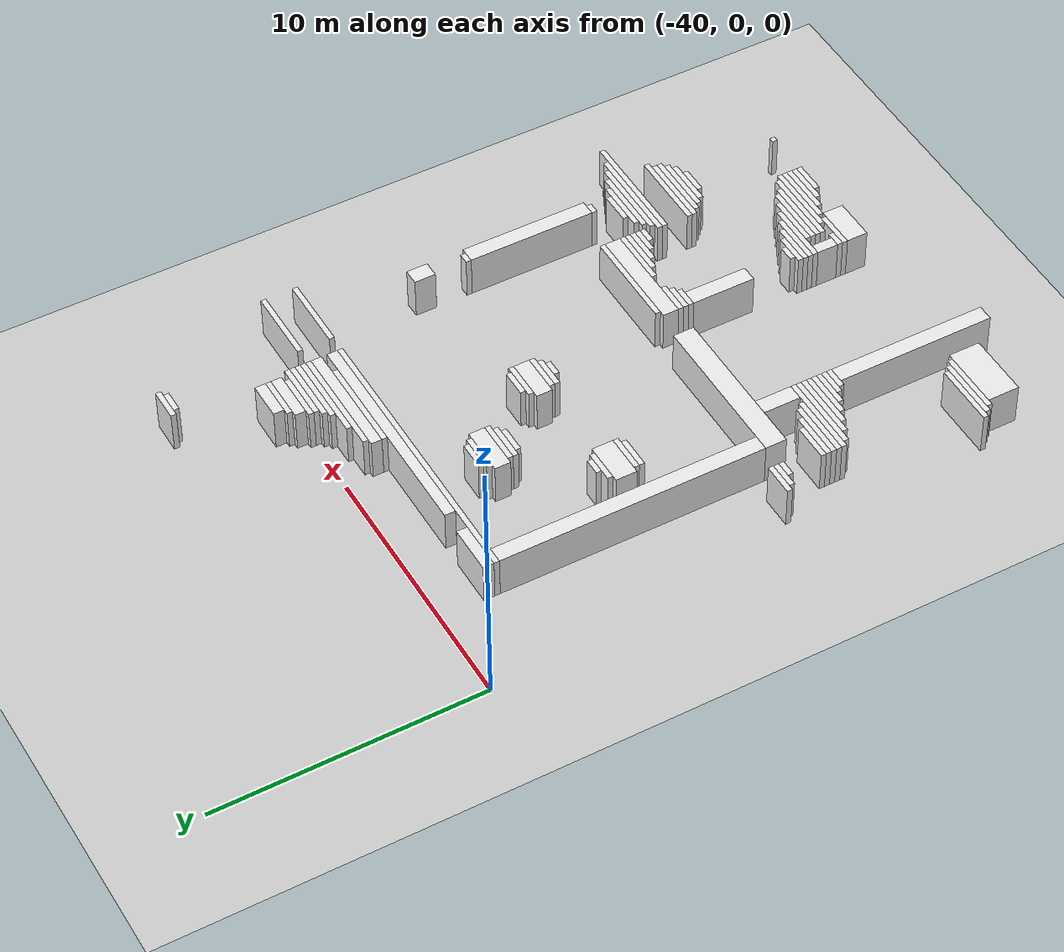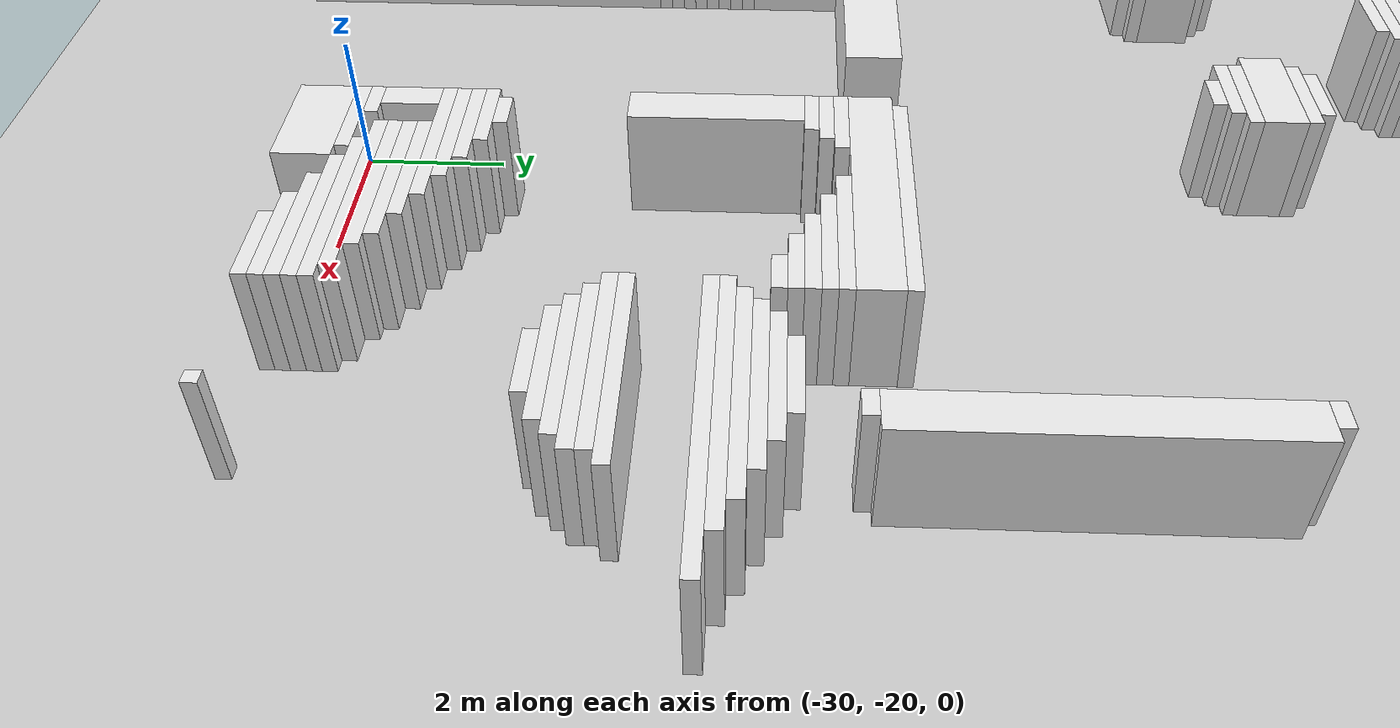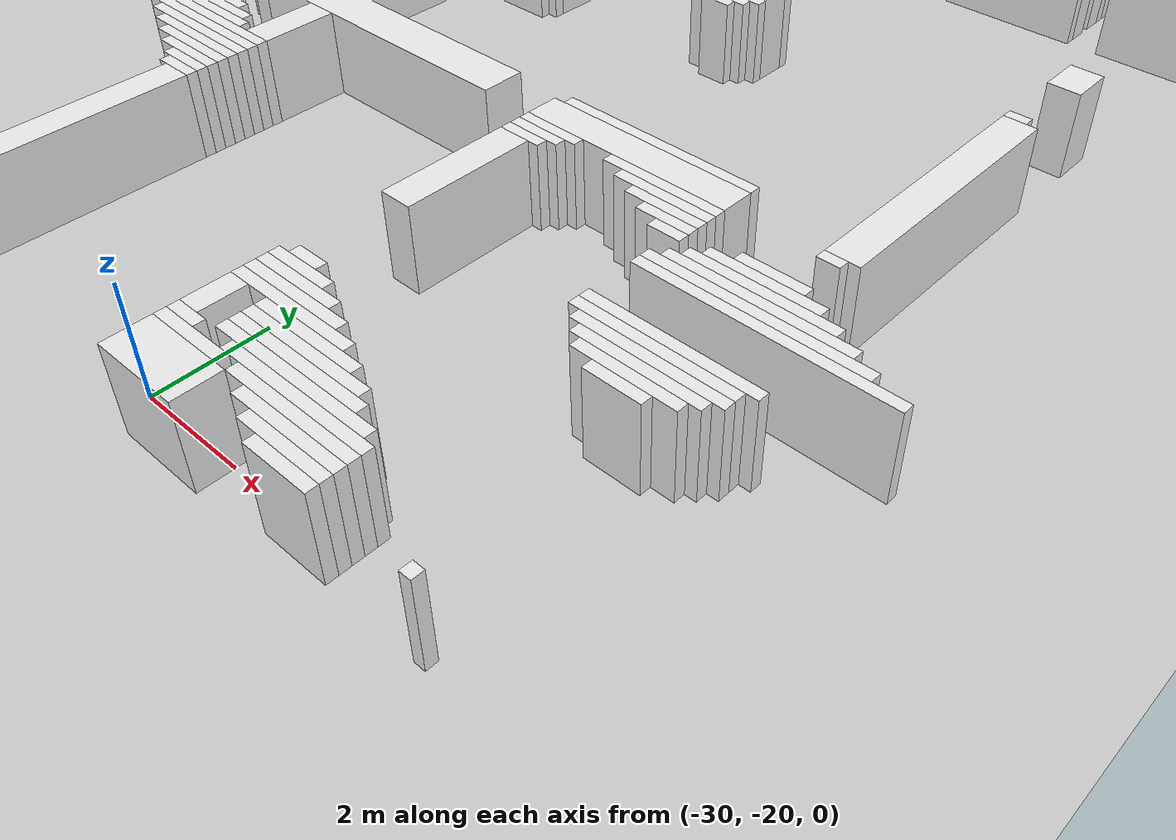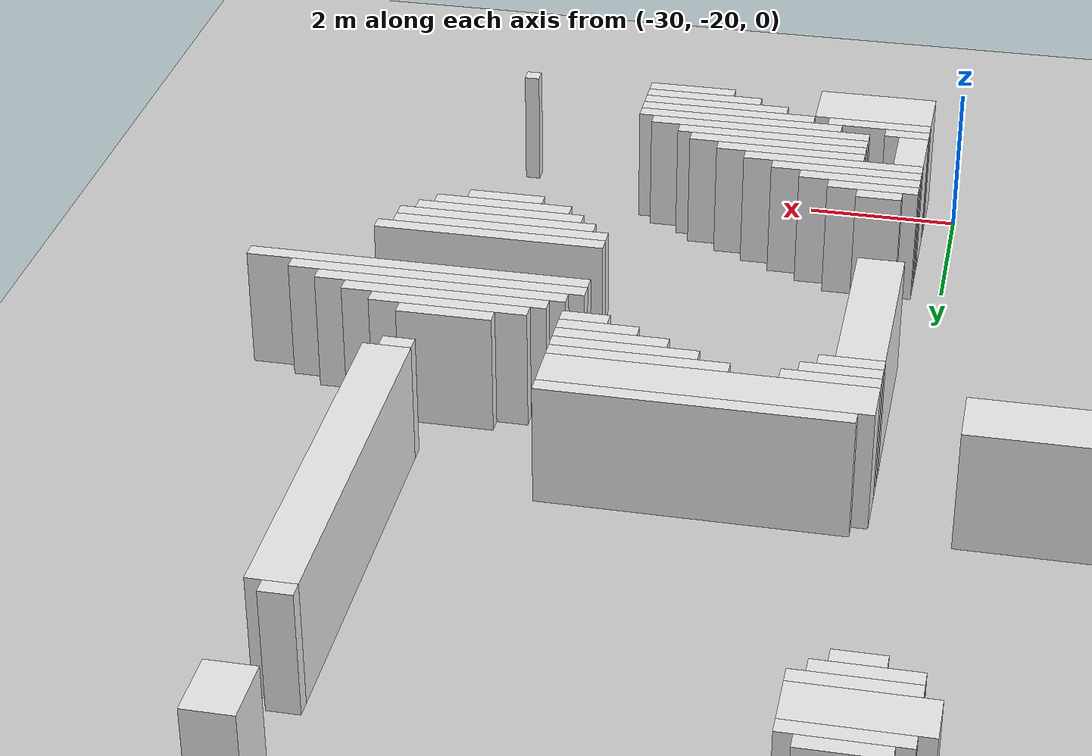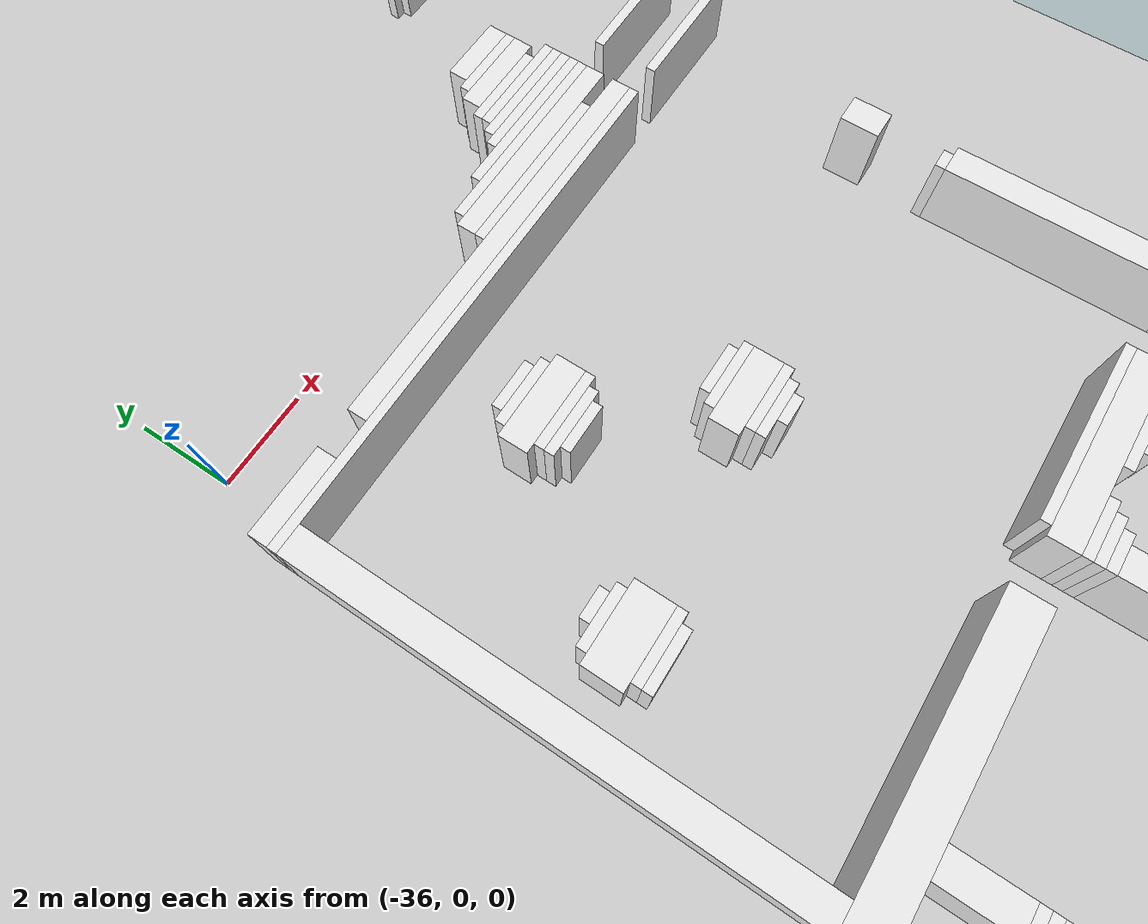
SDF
<sdf version="1.7">
 <world name="default">
  <model name="ground_plane">
   <static>1</static>
   <link name="link">
    <collision name="collision">
     <geometry><plane><normal>0 0 1</normal><size>120 120</size></plane></geometry>
    </collision>
    <visual name="visual">
     <geometry><plane><normal>0 0 1</normal><size>120 120</size></plane></geometry>
     <material>
      <script><uri>file://media/materials/scripts/gazebo.material</uri><name>Gazebo/Grey</name></script>
     </material>
    </visual>
   </link>
  </model>
  <model name="random_complex_02_model">
   <static>1</static>
   <link name="obs_1785">
    <pose>-25.0000 4.1000 0.8000 0 0 0</pose>
    <collision name="obs_1785_col"><geometry><box><size>1.2000 0.2000 1.6000</size></box></geometry></collision>
    <visual name="obs_1785_vis">
     <geometry><box><size>1.2000 0.2000 1.6000</size></box></geometry>
     <material>
      <script><uri>file://media/materials/scripts/gazebo.material</uri><name>Gazebo/White</name></script>
     </material>
    </visual>
   </link>
   <link name="obs_1798">
    <pose>-25.0000 3.9000 0.8000 0 0 0</pose>
    <collision name="obs_1798_col"><geometry><box><size>0.8000 0.2000 1.6000</size></box></geometry></collision>
    <visual name="obs_1798_vis">
     <geometry><box><size>0.8000 0.2000 1.6000</size></box></geometry>
     <material>
      <script><uri>file://media/materials/scripts/gazebo.material</uri><name>Gazebo/White</name></script>
     </material>
    </visual>
   </link>
   <link name="obs_1925">
    <pose>-26.5000 1.0000 0.8000 0 0 0</pose>
    <collision name="obs_1925_col"><geometry><box><size>1.4000 0.4000 1.6000</size></box></geometry></collision>
    <visual name="obs_1925_vis">
     <geometry><box><size>1.4000 0.4000 1.6000</size></box></geometry>
     <material>
      <script><uri>file://media/materials/scripts/gazebo.material</uri><name>Gazebo/White</name></script>
     </material>
    </visual>
   </link>
   <link name="obs_1937">
    <pose>-26.6000 0.7000 0.8000 0 0 0</pose>
    <collision name="obs_1937_col"><geometry><box><size>1.6000 0.2000 1.6000</size></box></geometry></collision>
    <visual name="obs_1937_vis">
     <geometry><box><size>1.6000 0.2000 1.6000</size></box></geometry>
     <material>
      <script><uri>file://media/materials/scripts/gazebo.material</uri><name>Gazebo/White</name></script>
     </material>
    </visual>
   </link>
   <link name="obs_1953">
    <pose>-26.7000 0.4000 0.8000 0 0 0</pose>
    <collision name="obs_1953_col"><geometry><box><size>1.8000 0.4000 1.6000</size></box></geometry></collision>
    <visual name="obs_1953_vis">
     <geometry><box><size>1.8000 0.4000 1.6000</size></box></geometry>
     <material>
      <script><uri>file://media/materials/scripts/gazebo.material</uri><name>Gazebo/White</name></script>
     </material>
    </visual>
   </link>
   <link name="obs_1963">
    <pose>-26.9000 0.1000 0.8000 0 0 0</pose>
    <collision name="obs_1963_col"><geometry><box><size>1.8000 0.2000 1.6000</size></box></geometry></collision>
    <visual name="obs_1963_vis">
     <geometry><box><size>1.8000 0.2000 1.6000</size></box></geometry>
     <material>
      <script><uri>file://media/materials/scripts/gazebo.material</uri><name>Gazebo/White</name></script>
     </material>
    </visual>
   </link>
   <link name="obs_1972">
    <pose>-26.7000 -0.1000 0.8000 0 0 0</pose>
    <collision name="obs_1972_col"><geometry><box><size>2.2000 0.2000 1.6000</size></box></geometry></collision>
    <visual name="obs_1972_vis">
     <geometry><box><size>2.2000 0.2000 1.6000</size></box></geometry>
     <material>
      <script><uri>file://media/materials/scripts/gazebo.material</uri><name>Gazebo/White</name></script>
     </material>
    </visual>
   </link>
   <link name="obs_1980">
    <pose>-26.8000 -0.3000 0.8000 0 0 0</pose>
    <collision name="obs_1980_col"><geometry><box><size>2.4000 0.2000 1.6000</size></box></geometry></collision>
    <visual name="obs_1980_vis">
     <geometry><box><size>2.4000 0.2000 1.6000</size></box></geometry>
     <material>
      <script><uri>file://media/materials/scripts/gazebo.material</uri><name>Gazebo/White</name></script>
     </material>
    </visual>
   </link>
   <link name="obs_1988">
    <pose>-26.9000 -0.5000 0.8000 0 0 0</pose>
    <collision name="obs_1988_col"><geometry><box><size>2.6000 0.2000 1.6000</size></box></geometry></collision>
    <visual name="obs_1988_vis">
     <geometry><box><size>2.6000 0.2000 1.6000</size></box></geometry>
     <material>
      <script><uri>file://media/materials/scripts/gazebo.material</uri><name>Gazebo/White</name></script>
     </material>
    </visual>
   </link>
   <link name="obs_1996">
    <pose>-27.3000 -0.7000 0.8000 0 0 0</pose>
    <collision name="obs_1996_col"><geometry><box><size>3.4000 0.2000 1.6000</size></box></geometry></collision>
    <visual name="obs_1996_vis">
     <geometry><box><size>3.4000 0.2000 1.6000</size></box></geometry>
     <material>
      <script><uri>file://media/materials/scripts/gazebo.material</uri><name>Gazebo/White</name></script>
     </material>
    </visual>
   </link>
   <link name="obs_2007">
    <pose>-27.7000 -0.9000 0.8000 0 0 0</pose>
    <collision name="obs_2007_col"><geometry><box><size>4.2000 0.2000 1.6000</size></box></geometry></collision>
    <visual name="obs_2007_vis">
     <geometry><box><size>4.2000 0.2000 1.6000</size></box></geometry>
     <material>
      <script><uri>file://media/materials/scripts/gazebo.material</uri><name>Gazebo/White</name></script>
     </material>
    </visual>
   </link>
   <link name="obs_2008">
    <pose>-23.6000 -0.9000 0.8000 0 0 0</pose>
    <collision name="obs_2008_col"><geometry><box><size>2.8000 0.2000 1.6000</size></box></geometry></collision>
    <visual name="obs_2008_vis">
     <geometry><box><size>2.8000 0.2000 1.6000</size></box></geometry>
     <material>
      <script><uri>file://media/materials/scripts/gazebo.material</uri><name>Gazebo/White</name></script>
     </material>
    </visual>
   </link>
   <link name="obs_2025">
    <pose>-27.8000 -1.2000 0.8000 0 0 0</pose>
    <collision name="obs_2025_col"><geometry><box><size>4.4000 0.4000 1.6000</size></box></geometry></collision>
    <visual name="obs_2025_vis">
     <geometry><box><size>4.4000 0.4000 1.6000</size></box></geometry>
     <material>
      <script><uri>file://media/materials/scripts/gazebo.material</uri><name>Gazebo/White</name></script>
     </material>
    </visual>
   </link>
   <link name="obs_2038">
    <pose>-28.2000 -1.5000 0.8000 0 0 0</pose>
    <collision name="obs_2038_col"><geometry><box><size>3.6000 0.2000 1.6000</size></box></geometry></collision>
    <visual name="obs_2038_vis">
     <geometry><box><size>3.6000 0.2000 1.6000</size></box></geometry>
     <material>
      <script><uri>file://media/materials/scripts/gazebo.material</uri><name>Gazebo/White</name></script>
     </material>
    </visual>
   </link>
   <link name="obs_2052">
    <pose>-35.7000 -1.8000 0.8000 0 0 0</pose>
    <collision name="obs_2052_col"><geometry><box><size>1.8000 0.4000 1.6000</size></box></geometry></collision>
    <visual name="obs_2052_vis">
     <geometry><box><size>1.8000 0.4000 1.6000</size></box></geometry>
     <material>
      <script><uri>file://media/materials/scripts/gazebo.material</uri><name>Gazebo/White</name></script>
     </material>
    </visual>
   </link>
   <link name="obs_2053">
    <pose>-29.8000 -1.8000 0.8000 0 0 0</pose>
    <collision name="obs_2053_col"><geometry><box><size>8.4000 0.4000 1.6000</size></box></geometry></collision>
    <visual name="obs_2053_vis">
     <geometry><box><size>8.4000 0.4000 1.6000</size></box></geometry>
     <material>
      <script><uri>file://media/materials/scripts/gazebo.material</uri><name>Gazebo/White</name></script>
     </material>
    </visual>
   </link>
   <link name="obs_2062">
    <pose>-31.1000 -2.1000 0.8000 0 0 0</pose>
    <collision name="obs_2062_col"><geometry><box><size>11.0000 0.2000 1.6000</size></box></geometry></collision>
    <visual name="obs_2062_vis">
     <geometry><box><size>11.0000 0.2000 1.6000</size></box></geometry>
     <material>
      <script><uri>file://media/materials/scripts/gazebo.material</uri><name>Gazebo/White</name></script>
     </material>
    </visual>
   </link>
   <link name="obs_2063">
    <pose>-23.6000 -2.1000 0.8000 0 0 0</pose>
    <collision name="obs_2063_col"><geometry><box><size>2.8000 0.2000 1.6000</size></box></geometry></collision>
    <visual name="obs_2063_vis">
     <geometry><box><size>2.8000 0.2000 1.6000</size></box></geometry>
     <material>
      <script><uri>file://media/materials/scripts/gazebo.material</uri><name>Gazebo/White</name></script>
     </material>
    </visual>
   </link>
   <link name="obs_2125">
    <pose>-32.1000 -3.7000 0.8000 0 0 0</pose>
    <collision name="obs_2125_col"><geometry><box><size>1.0000 0.2000 1.6000</size></box></geometry></collision>
    <visual name="obs_2125_vis">
     <geometry><box><size>1.0000 0.2000 1.6000</size></box></geometry>
     <material>
      <script><uri>file://media/materials/scripts/gazebo.material</uri><name>Gazebo/White</name></script>
     </material>
    </visual>
   </link>
   <link name="obs_2137">
    <pose>-32.1000 -3.9000 0.8000 0 0 0</pose>
    <collision name="obs_2137_col"><geometry><box><size>1.4000 0.2000 1.6000</size></box></geometry></collision>
    <visual name="obs_2137_vis">
     <geometry><box><size>1.4000 0.2000 1.6000</size></box></geometry>
     <material>
      <script><uri>file://media/materials/scripts/gazebo.material</uri><name>Gazebo/White</name></script>
     </material>
    </visual>
   </link>
   <link name="obs_2164">
    <pose>-32.1000 -4.3000 0.8000 0 0 0</pose>
    <collision name="obs_2164_col"><geometry><box><size>1.8000 0.6000 1.6000</size></box></geometry></collision>
    <visual name="obs_2164_vis">
     <geometry><box><size>1.8000 0.6000 1.6000</size></box></geometry>
     <material>
      <script><uri>file://media/materials/scripts/gazebo.material</uri><name>Gazebo/White</name></script>
     </material>
    </visual>
   </link>
   <link name="obs_2173">
    <pose>-32.0000 -4.7000 0.8000 0 0 0</pose>
    <collision name="obs_2173_col"><geometry><box><size>1.6000 0.2000 1.6000</size></box></geometry></collision>
    <visual name="obs_2173_vis">
     <geometry><box><size>1.6000 0.2000 1.6000</size></box></geometry>
     <material>
      <script><uri>file://media/materials/scripts/gazebo.material</uri><name>Gazebo/White</name></script>
     </material>
    </visual>
   </link>
   <link name="obs_2179">
    <pose>-32.1000 -4.9000 0.8000 0 0 0</pose>
    <collision name="obs_2179_col"><geometry><box><size>1.4000 0.2000 1.6000</size></box></geometry></collision>
    <visual name="obs_2179_vis">
     <geometry><box><size>1.4000 0.2000 1.6000</size></box></geometry>
     <material>
      <script><uri>file://media/materials/scripts/gazebo.material</uri><name>Gazebo/White</name></script>
     </material>
    </visual>
   </link>
   <link name="obs_2187">
    <pose>-32.1000 -5.1000 0.8000 0 0 0</pose>
    <collision name="obs_2187_col"><geometry><box><size>1.0000 0.2000 1.6000</size></box></geometry></collision>
    <visual name="obs_2187_vis">
     <geometry><box><size>1.0000 0.2000 1.6000</size></box></geometry>
     <material>
      <script><uri>file://media/materials/scripts/gazebo.material</uri><name>Gazebo/White</name></script>
     </material>
    </visual>
   </link>
   <link name="obs_2242">
    <pose>-23.7000 -6.2000 0.8000 0 0 0</pose>
    <collision name="obs_2242_col"><geometry><box><size>0.6000 0.8000 1.6000</size></box></geometry></collision>
    <visual name="obs_2242_vis">
     <geometry><box><size>0.6000 0.8000 1.6000</size></box></geometry>
     <material>
      <script><uri>file://media/materials/scripts/gazebo.material</uri><name>Gazebo/White</name></script>
     </material>
    </visual>
   </link>
   <link name="obs_2244">
    <pose>-29.9000 -6.5000 0.8000 0 0 0</pose>
    <collision name="obs_2244_col"><geometry><box><size>1.0000 0.2000 1.6000</size></box></geometry></collision>
    <visual name="obs_2244_vis">
     <geometry><box><size>1.0000 0.2000 1.6000</size></box></geometry>
     <material>
      <script><uri>file://media/materials/scripts/gazebo.material</uri><name>Gazebo/White</name></script>
     </material>
    </visual>
   </link>
   <link name="obs_2250">
    <pose>-29.9000 -6.7000 0.8000 0 0 0</pose>
    <collision name="obs_2250_col"><geometry><box><size>1.4000 0.2000 1.6000</size></box></geometry></collision>
    <visual name="obs_2250_vis">
     <geometry><box><size>1.4000 0.2000 1.6000</size></box></geometry>
     <material>
      <script><uri>file://media/materials/scripts/gazebo.material</uri><name>Gazebo/White</name></script>
     </material>
    </visual>
   </link>
   <link name="obs_2255">
    <pose>-34.5000 -6.9000 0.8000 0 0 0</pose>
    <collision name="obs_2255_col"><geometry><box><size>0.6000 0.2000 1.6000</size></box></geometry></collision>
    <visual name="obs_2255_vis">
     <geometry><box><size>0.6000 0.2000 1.6000</size></box></geometry>
     <material>
      <script><uri>file://media/materials/scripts/gazebo.material</uri><name>Gazebo/White</name></script>
     </material>
    </visual>
   </link>
   <link name="obs_2260">
    <pose>-34.6000 -7.1000 0.8000 0 0 0</pose>
    <collision name="obs_2260_col"><geometry><box><size>1.2000 0.2000 1.6000</size></box></geometry></collision>
    <visual name="obs_2260_vis">
     <geometry><box><size>1.2000 0.2000 1.6000</size></box></geometry>
     <material>
      <script><uri>file://media/materials/scripts/gazebo.material</uri><name>Gazebo/White</name></script>
     </material>
    </visual>
   </link>
   <link name="obs_2267">
    <pose>-30.0000 -7.1000 0.8000 0 0 0</pose>
    <collision name="obs_2267_col"><geometry><box><size>1.6000 0.6000 1.6000</size></box></geometry></collision>
    <visual name="obs_2267_vis">
     <geometry><box><size>1.6000 0.6000 1.6000</size></box></geometry>
     <material>
      <script><uri>file://media/materials/scripts/gazebo.material</uri><name>Gazebo/White</name></script>
     </material>
    </visual>
   </link>
   <link name="obs_2275">
    <pose>-29.9000 -7.5000 0.8000 0 0 0</pose>
    <collision name="obs_2275_col"><geometry><box><size>1.4000 0.2000 1.6000</size></box></geometry></collision>
    <visual name="obs_2275_vis">
     <geometry><box><size>1.4000 0.2000 1.6000</size></box></geometry>
     <material>
      <script><uri>file://media/materials/scripts/gazebo.material</uri><name>Gazebo/White</name></script>
     </material>
    </visual>
   </link>
   <link name="obs_2280">
    <pose>-30.0000 -7.7000 0.8000 0 0 0</pose>
    <collision name="obs_2280_col"><geometry><box><size>1.2000 0.2000 1.6000</size></box></geometry></collision>
    <visual name="obs_2280_vis">
     <geometry><box><size>1.2000 0.2000 1.6000</size></box></geometry>
     <material>
      <script><uri>file://media/materials/scripts/gazebo.material</uri><name>Gazebo/White</name></script>
     </material>
    </visual>
   </link>
   <link name="obs_2286">
    <pose>-34.6000 -7.6000 0.8000 0 0 0</pose>
    <collision name="obs_2286_col"><geometry><box><size>1.6000 0.8000 1.6000</size></box></geometry></collision>
    <visual name="obs_2286_vis">
     <geometry><box><size>1.6000 0.8000 1.6000</size></box></geometry>
     <material>
      <script><uri>file://media/materials/scripts/gazebo.material</uri><name>Gazebo/White</name></script>
     </material>
    </visual>
   </link>
   <link name="obs_2288">
    <pose>-29.9000 -7.9000 0.8000 0 0 0</pose>
    <collision name="obs_2288_col"><geometry><box><size>0.6000 0.2000 1.6000</size></box></geometry></collision>
    <visual name="obs_2288_vis">
     <geometry><box><size>0.6000 0.2000 1.6000</size></box></geometry>
     <material>
      <script><uri>file://media/materials/scripts/gazebo.material</uri><name>Gazebo/White</name></script>
     </material>
    </visual>
   </link>
   <link name="obs_2289">
    <pose>-23.8000 -7.9000 0.8000 0 0 0</pose>
    <collision name="obs_2289_col"><geometry><box><size>0.4000 0.2000 1.6000</size></box></geometry></collision>
    <visual name="obs_2289_vis">
     <geometry><box><size>0.4000 0.2000 1.6000</size></box></geometry>
     <material>
      <script><uri>file://media/materials/scripts/gazebo.material</uri><name>Gazebo/White</name></script>
     </material>
    </visual>
   </link>
   <link name="obs_2298">
    <pose>-34.5000 -8.1000 0.8000 0 0 0</pose>
    <collision name="obs_2298_col"><geometry><box><size>1.4000 0.2000 1.6000</size></box></geometry></collision>
    <visual name="obs_2298_vis">
     <geometry><box><size>1.4000 0.2000 1.6000</size></box></geometry>
     <material>
      <script><uri>file://media/materials/scripts/gazebo.material</uri><name>Gazebo/White</name></script>
     </material>
    </visual>
   </link>
   <link name="obs_2305">
    <pose>-34.6000 -8.3000 0.8000 0 0 0</pose>
    <collision name="obs_2305_col"><geometry><box><size>1.2000 0.2000 1.6000</size></box></geometry></collision>
    <visual name="obs_2305_vis">
     <geometry><box><size>1.2000 0.2000 1.6000</size></box></geometry>
     <material>
      <script><uri>file://media/materials/scripts/gazebo.material</uri><name>Gazebo/White</name></script>
     </material>
    </visual>
   </link>
   <link name="obs_2416">
    <pose>-38.0000 -11.9000 0.8000 0 0 0</pose>
    <collision name="obs_2416_col"><geometry><box><size>1.2000 0.2000 1.6000</size></box></geometry></collision>
    <visual name="obs_2416_vis">
     <geometry><box><size>1.2000 0.2000 1.6000</size></box></geometry>
     <material>
      <script><uri>file://media/materials/scripts/gazebo.material</uri><name>Gazebo/White</name></script>
     </material>
    </visual>
   </link>
   <link name="obs_2423">
    <pose>-36.3000 -7.2000 0.8000 0 0 0</pose>
    <collision name="obs_2423_col"><geometry><box><size>0.6000 10.0000 1.6000</size></box></geometry></collision>
    <visual name="obs_2423_vis">
     <geometry><box><size>0.6000 10.0000 1.6000</size></box></geometry>
     <material>
      <script><uri>file://media/materials/scripts/gazebo.material</uri><name>Gazebo/White</name></script>
     </material>
    </visual>
   </link>
   <link name="obs_2424">
    <pose>-37.9000 -12.1000 0.8000 0 0 0</pose>
    <collision name="obs_2424_col"><geometry><box><size>1.0000 0.2000 1.6000</size></box></geometry></collision>
    <visual name="obs_2424_vis">
     <geometry><box><size>1.0000 0.2000 1.6000</size></box></geometry>
     <material>
      <script><uri>file://media/materials/scripts/gazebo.material</uri><name>Gazebo/White</name></script>
     </material>
    </visual>
   </link>
   <link name="obs_2432">
    <pose>-37.7000 -12.3000 0.8000 0 0 0</pose>
    <collision name="obs_2432_col"><geometry><box><size>0.6000 0.2000 1.6000</size></box></geometry></collision>
    <visual name="obs_2432_vis">
     <geometry><box><size>0.6000 0.2000 1.6000</size></box></geometry>
     <material>
      <script><uri>file://media/materials/scripts/gazebo.material</uri><name>Gazebo/White</name></script>
     </material>
    </visual>
   </link>
   <link name="obs_2433">
    <pose>-27.5000 -12.3000 0.8000 0 0 0</pose>
    <collision name="obs_2433_col"><geometry><box><size>3.8000 0.2000 1.6000</size></box></geometry></collision>
    <visual name="obs_2433_vis">
     <geometry><box><size>3.8000 0.2000 1.6000</size></box></geometry>
     <material>
      <script><uri>file://media/materials/scripts/gazebo.material</uri><name>Gazebo/White</name></script>
     </material>
    </visual>
   </link>
   <link name="obs_2447">
    <pose>-23.7000 -10.4000 0.8000 0 0 0</pose>
    <collision name="obs_2447_col"><geometry><box><size>0.6000 4.8000 1.6000</size></box></geometry></collision>
    <visual name="obs_2447_vis">
     <geometry><box><size>0.6000 4.8000 1.6000</size></box></geometry>
     <material>
      <script><uri>file://media/materials/scripts/gazebo.material</uri><name>Gazebo/White</name></script>
     </material>
    </visual>
   </link>
   <link name="obs_2459">
    <pose>-33.6000 -12.6000 0.8000 0 0 0</pose>
    <collision name="obs_2459_col"><geometry><box><size>6.0000 0.8000 1.6000</size></box></geometry></collision>
    <visual name="obs_2459_vis">
     <geometry><box><size>6.0000 0.8000 1.6000</size></box></geometry>
     <material>
      <script><uri>file://media/materials/scripts/gazebo.material</uri><name>Gazebo/White</name></script>
     </material>
    </visual>
   </link>
   <link name="obs_2460">
    <pose>-27.6000 -12.7000 0.8000 0 0 0</pose>
    <collision name="obs_2460_col"><geometry><box><size>4.0000 0.6000 1.6000</size></box></geometry></collision>
    <visual name="obs_2460_vis">
     <geometry><box><size>4.0000 0.6000 1.6000</size></box></geometry>
     <material>
      <script><uri>file://media/materials/scripts/gazebo.material</uri><name>Gazebo/White</name></script>
     </material>
    </visual>
   </link>
   <link name="obs_2463">
    <pose>-23.8000 -12.9000 0.8000 0 0 0</pose>
    <collision name="obs_2463_col"><geometry><box><size>0.4000 0.2000 1.6000</size></box></geometry></collision>
    <visual name="obs_2463_vis">
     <geometry><box><size>0.4000 0.2000 1.6000</size></box></geometry>
     <material>
      <script><uri>file://media/materials/scripts/gazebo.material</uri><name>Gazebo/White</name></script>
     </material>
    </visual>
   </link>
   <link name="obs_2467">
    <pose>-29.0000 -13.1000 0.8000 0 0 0</pose>
    <collision name="obs_2467_col"><geometry><box><size>1.2000 0.2000 1.6000</size></box></geometry></collision>
    <visual name="obs_2467_vis">
     <geometry><box><size>1.2000 0.2000 1.6000</size></box></geometry>
     <material>
      <script><uri>file://media/materials/scripts/gazebo.material</uri><name>Gazebo/White</name></script>
     </material>
    </visual>
   </link>
   <link name="obs_2468">
    <pose>-26.7000 -13.1000 0.8000 0 0 0</pose>
    <collision name="obs_2468_col"><geometry><box><size>2.2000 0.2000 1.6000</size></box></geometry></collision>
    <visual name="obs_2468_vis">
     <geometry><box><size>2.2000 0.2000 1.6000</size></box></geometry>
     <material>
      <script><uri>file://media/materials/scripts/gazebo.material</uri><name>Gazebo/White</name></script>
     </material>
    </visual>
   </link>
   <link name="obs_2473">
    <pose>-29.1000 -13.3000 0.8000 0 0 0</pose>
    <collision name="obs_2473_col"><geometry><box><size>1.0000 0.2000 1.6000</size></box></geometry></collision>
    <visual name="obs_2473_vis">
     <geometry><box><size>1.0000 0.2000 1.6000</size></box></geometry>
     <material>
      <script><uri>file://media/materials/scripts/gazebo.material</uri><name>Gazebo/White</name></script>
     </material>
    </visual>
   </link>
   <link name="obs_2474">
    <pose>-26.5000 -13.3000 0.8000 0 0 0</pose>
    <collision name="obs_2474_col"><geometry><box><size>1.8000 0.2000 1.6000</size></box></geometry></collision>
    <visual name="obs_2474_vis">
     <geometry><box><size>1.8000 0.2000 1.6000</size></box></geometry>
     <material>
      <script><uri>file://media/materials/scripts/gazebo.material</uri><name>Gazebo/White</name></script>
     </material>
    </visual>
   </link>
   <link name="obs_2480">
    <pose>-29.2000 -13.5000 0.8000 0 0 0</pose>
    <collision name="obs_2480_col"><geometry><box><size>0.8000 0.2000 1.6000</size></box></geometry></collision>
    <visual name="obs_2480_vis">
     <geometry><box><size>0.8000 0.2000 1.6000</size></box></geometry>
     <material>
      <script><uri>file://media/materials/scripts/gazebo.material</uri><name>Gazebo/White</name></script>
     </material>
    </visual>
   </link>
   <link name="obs_2481">
    <pose>-26.3000 -13.5000 0.8000 0 0 0</pose>
    <collision name="obs_2481_col"><geometry><box><size>1.4000 0.2000 1.6000</size></box></geometry></collision>
    <visual name="obs_2481_vis">
     <geometry><box><size>1.4000 0.2000 1.6000</size></box></geometry>
     <material>
      <script><uri>file://media/materials/scripts/gazebo.material</uri><name>Gazebo/White</name></script>
     </material>
    </visual>
   </link>
   <link name="obs_2486">
    <pose>-37.1000 -13.7000 0.8000 0 0 0</pose>
    <collision name="obs_2486_col"><geometry><box><size>1.4000 0.2000 1.6000</size></box></geometry></collision>
    <visual name="obs_2486_vis">
     <geometry><box><size>1.4000 0.2000 1.6000</size></box></geometry>
     <material>
      <script><uri>file://media/materials/scripts/gazebo.material</uri><name>Gazebo/White</name></script>
     </material>
    </visual>
   </link>
   <link name="obs_2487">
    <pose>-26.1000 -13.7000 0.8000 0 0 0</pose>
    <collision name="obs_2487_col"><geometry><box><size>1.0000 0.2000 1.6000</size></box></geometry></collision>
    <visual name="obs_2487_vis">
     <geometry><box><size>1.0000 0.2000 1.6000</size></box></geometry>
     <material>
      <script><uri>file://media/materials/scripts/gazebo.material</uri><name>Gazebo/White</name></script>
     </material>
    </visual>
   </link>
   <link name="obs_2488">
    <pose>-24.2000 -13.7000 0.8000 0 0 0</pose>
    <collision name="obs_2488_col"><geometry><box><size>1.2000 0.2000 1.6000</size></box></geometry></collision>
    <visual name="obs_2488_vis">
     <geometry><box><size>1.2000 0.2000 1.6000</size></box></geometry>
     <material>
      <script><uri>file://media/materials/scripts/gazebo.material</uri><name>Gazebo/White</name></script>
     </material>
    </visual>
   </link>
   <link name="obs_2494">
    <pose>-36.9000 -13.9000 0.8000 0 0 0</pose>
    <collision name="obs_2494_col"><geometry><box><size>1.8000 0.2000 1.6000</size></box></geometry></collision>
    <visual name="obs_2494_vis">
     <geometry><box><size>1.8000 0.2000 1.6000</size></box></geometry>
     <material>
      <script><uri>file://media/materials/scripts/gazebo.material</uri><name>Gazebo/White</name></script>
     </material>
    </visual>
   </link>
   <link name="obs_2495">
    <pose>-25.9000 -13.9000 0.8000 0 0 0</pose>
    <collision name="obs_2495_col"><geometry><box><size>0.6000 0.2000 1.6000</size></box></geometry></collision>
    <visual name="obs_2495_vis">
     <geometry><box><size>0.6000 0.2000 1.6000</size></box></geometry>
     <material>
      <script><uri>file://media/materials/scripts/gazebo.material</uri><name>Gazebo/White</name></script>
     </material>
    </visual>
   </link>
   <link name="obs_2496">
    <pose>-24.2000 -13.9000 0.8000 0 0 0</pose>
    <collision name="obs_2496_col"><geometry><box><size>2.0000 0.2000 1.6000</size></box></geometry></collision>
    <visual name="obs_2496_vis">
     <geometry><box><size>2.0000 0.2000 1.6000</size></box></geometry>
     <material>
      <script><uri>file://media/materials/scripts/gazebo.material</uri><name>Gazebo/White</name></script>
     </material>
    </visual>
   </link>
   <link name="obs_2503">
    <pose>-36.7000 -14.1000 0.8000 0 0 0</pose>
    <collision name="obs_2503_col"><geometry><box><size>2.2000 0.2000 1.6000</size></box></geometry></collision>
    <visual name="obs_2503_vis">
     <geometry><box><size>2.2000 0.2000 1.6000</size></box></geometry>
     <material>
      <script><uri>file://media/materials/scripts/gazebo.material</uri><name>Gazebo/White</name></script>
     </material>
    </visual>
   </link>
   <link name="obs_2504">
    <pose>-24.1000 -14.1000 0.8000 0 0 0</pose>
    <collision name="obs_2504_col"><geometry><box><size>2.6000 0.2000 1.6000</size></box></geometry></collision>
    <visual name="obs_2504_vis">
     <geometry><box><size>2.6000 0.2000 1.6000</size></box></geometry>
     <material>
      <script><uri>file://media/materials/scripts/gazebo.material</uri><name>Gazebo/White</name></script>
     </material>
    </visual>
   </link>
   <link name="obs_2509">
    <pose>-34.9000 -13.7000 0.8000 0 0 0</pose>
    <collision name="obs_2509_col"><geometry><box><size>0.6000 1.4000 1.6000</size></box></geometry></collision>
    <visual name="obs_2509_vis">
     <geometry><box><size>0.6000 1.4000 1.6000</size></box></geometry>
     <material>
      <script><uri>file://media/materials/scripts/gazebo.material</uri><name>Gazebo/White</name></script>
     </material>
    </visual>
   </link>
   <link name="obs_2511">
    <pose>-36.6000 -14.3000 0.8000 0 0 0</pose>
    <collision name="obs_2511_col"><geometry><box><size>2.4000 0.2000 1.6000</size></box></geometry></collision>
    <visual name="obs_2511_vis">
     <geometry><box><size>2.4000 0.2000 1.6000</size></box></geometry>
     <material>
      <script><uri>file://media/materials/scripts/gazebo.material</uri><name>Gazebo/White</name></script>
     </material>
    </visual>
   </link>
   <link name="obs_2512">
    <pose>-24.0000 -14.3000 0.8000 0 0 0</pose>
    <collision name="obs_2512_col"><geometry><box><size>3.2000 0.2000 1.6000</size></box></geometry></collision>
    <visual name="obs_2512_vis">
     <geometry><box><size>3.2000 0.2000 1.6000</size></box></geometry>
     <material>
      <script><uri>file://media/materials/scripts/gazebo.material</uri><name>Gazebo/White</name></script>
     </material>
    </visual>
   </link>
   <link name="obs_2523">
    <pose>-36.2000 -14.5000 0.8000 0 0 0</pose>
    <collision name="obs_2523_col"><geometry><box><size>3.2000 0.2000 1.6000</size></box></geometry></collision>
    <visual name="obs_2523_vis">
     <geometry><box><size>3.2000 0.2000 1.6000</size></box></geometry>
     <material>
      <script><uri>file://media/materials/scripts/gazebo.material</uri><name>Gazebo/White</name></script>
     </material>
    </visual>
   </link>
   <link name="obs_2524">
    <pose>-23.9000 -14.5000 0.8000 0 0 0</pose>
    <collision name="obs_2524_col"><geometry><box><size>3.8000 0.2000 1.6000</size></box></geometry></collision>
    <visual name="obs_2524_vis">
     <geometry><box><size>3.8000 0.2000 1.6000</size></box></geometry>
     <material>
      <script><uri>file://media/materials/scripts/gazebo.material</uri><name>Gazebo/White</name></script>
     </material>
    </visual>
   </link>
   <link name="obs_2531">
    <pose>-36.1000 -14.7000 0.8000 0 0 0</pose>
    <collision name="obs_2531_col"><geometry><box><size>3.0000 0.2000 1.6000</size></box></geometry></collision>
    <visual name="obs_2531_vis">
     <geometry><box><size>3.0000 0.2000 1.6000</size></box></geometry>
     <material>
      <script><uri>file://media/materials/scripts/gazebo.material</uri><name>Gazebo/White</name></script>
     </material>
    </visual>
   </link>
   <link name="obs_2532">
    <pose>-23.6000 -14.7000 0.8000 0 0 0</pose>
    <collision name="obs_2532_col"><geometry><box><size>4.4000 0.2000 1.6000</size></box></geometry></collision>
    <visual name="obs_2532_vis">
     <geometry><box><size>4.4000 0.2000 1.6000</size></box></geometry>
     <material>
      <script><uri>file://media/materials/scripts/gazebo.material</uri><name>Gazebo/White</name></script>
     </material>
    </visual>
   </link>
   <link name="obs_2542">
    <pose>-35.9000 -14.9000 0.8000 0 0 0</pose>
    <collision name="obs_2542_col"><geometry><box><size>2.6000 0.2000 1.6000</size></box></geometry></collision>
    <visual name="obs_2542_vis">
     <geometry><box><size>2.6000 0.2000 1.6000</size></box></geometry>
     <material>
      <script><uri>file://media/materials/scripts/gazebo.material</uri><name>Gazebo/White</name></script>
     </material>
    </visual>
   </link>
   <link name="obs_2552">
    <pose>-35.7000 -15.1000 0.8000 0 0 0</pose>
    <collision name="obs_2552_col"><geometry><box><size>2.2000 0.2000 1.6000</size></box></geometry></collision>
    <visual name="obs_2552_vis">
     <geometry><box><size>2.2000 0.2000 1.6000</size></box></geometry>
     <material>
      <script><uri>file://media/materials/scripts/gazebo.material</uri><name>Gazebo/White</name></script>
     </material>
    </visual>
   </link>
   <link name="obs_2563">
    <pose>-35.5000 -15.3000 0.8000 0 0 0</pose>
    <collision name="obs_2563_col"><geometry><box><size>1.8000 0.2000 1.6000</size></box></geometry></collision>
    <visual name="obs_2563_vis">
     <geometry><box><size>1.8000 0.2000 1.6000</size></box></geometry>
     <material>
      <script><uri>file://media/materials/scripts/gazebo.material</uri><name>Gazebo/White</name></script>
     </material>
    </visual>
   </link>
   <link name="obs_2573">
    <pose>-35.3000 -15.5000 0.8000 0 0 0</pose>
    <collision name="obs_2573_col"><geometry><box><size>1.4000 0.2000 1.6000</size></box></geometry></collision>
    <visual name="obs_2573_vis">
     <geometry><box><size>1.4000 0.2000 1.6000</size></box></geometry>
     <material>
      <script><uri>file://media/materials/scripts/gazebo.material</uri><name>Gazebo/White</name></script>
     </material>
    </visual>
   </link>
   <link name="obs_2585">
    <pose>-35.1000 -15.7000 0.8000 0 0 0</pose>
    <collision name="obs_2585_col"><geometry><box><size>1.0000 0.2000 1.6000</size></box></geometry></collision>
    <visual name="obs_2585_vis">
     <geometry><box><size>1.0000 0.2000 1.6000</size></box></geometry>
     <material>
      <script><uri>file://media/materials/scripts/gazebo.material</uri><name>Gazebo/White</name></script>
     </material>
    </visual>
   </link>
   <link name="obs_2586">
    <pose>-24.3000 -15.7000 0.8000 0 0 0</pose>
    <collision name="obs_2586_col"><geometry><box><size>3.0000 0.2000 1.6000</size></box></geometry></collision>
    <visual name="obs_2586_vis">
     <geometry><box><size>3.0000 0.2000 1.6000</size></box></geometry>
     <material>
      <script><uri>file://media/materials/scripts/gazebo.material</uri><name>Gazebo/White</name></script>
     </material>
    </visual>
   </link>
   <link name="obs_2594">
    <pose>-29.3000 -14.8000 0.8000 0 0 0</pose>
    <collision name="obs_2594_col"><geometry><box><size>0.6000 2.4000 1.6000</size></box></geometry></collision>
    <visual name="obs_2594_vis">
     <geometry><box><size>0.6000 2.4000 1.6000</size></box></geometry>
     <material>
      <script><uri>file://media/materials/scripts/gazebo.material</uri><name>Gazebo/White</name></script>
     </material>
    </visual>
   </link>
   <link name="obs_2598">
    <pose>-35.0000 -15.9000 0.8000 0 0 0</pose>
    <collision name="obs_2598_col"><geometry><box><size>0.8000 0.2000 1.6000</size></box></geometry></collision>
    <visual name="obs_2598_vis">
     <geometry><box><size>0.8000 0.2000 1.6000</size></box></geometry>
     <material>
      <script><uri>file://media/materials/scripts/gazebo.material</uri><name>Gazebo/White</name></script>
     </material>
    </visual>
   </link>
   <link name="obs_2599">
    <pose>-24.4000 -15.9000 0.8000 0 0 0</pose>
    <collision name="obs_2599_col"><geometry><box><size>2.8000 0.2000 1.6000</size></box></geometry></collision>
    <visual name="obs_2599_vis">
     <geometry><box><size>2.8000 0.2000 1.6000</size></box></geometry>
     <material>
      <script><uri>file://media/materials/scripts/gazebo.material</uri><name>Gazebo/White</name></script>
     </material>
    </visual>
   </link>
   <link name="obs_2609">
    <pose>-24.3000 -16.1000 0.8000 0 0 0</pose>
    <collision name="obs_2609_col"><geometry><box><size>2.6000 0.2000 1.6000</size></box></geometry></collision>
    <visual name="obs_2609_vis">
     <geometry><box><size>2.6000 0.2000 1.6000</size></box></geometry>
     <material>
      <script><uri>file://media/materials/scripts/gazebo.material</uri><name>Gazebo/White</name></script>
     </material>
    </visual>
   </link>
   <link name="obs_2615">
    <pose>-24.3000 -16.3000 0.8000 0 0 0</pose>
    <collision name="obs_2615_col"><geometry><box><size>2.2000 0.2000 1.6000</size></box></geometry></collision>
    <visual name="obs_2615_vis">
     <geometry><box><size>2.2000 0.2000 1.6000</size></box></geometry>
     <material>
      <script><uri>file://media/materials/scripts/gazebo.material</uri><name>Gazebo/White</name></script>
     </material>
    </visual>
   </link>
   <link name="obs_2622">
    <pose>-24.3000 -16.5000 0.8000 0 0 0</pose>
    <collision name="obs_2622_col"><geometry><box><size>1.8000 0.2000 1.6000</size></box></geometry></collision>
    <visual name="obs_2622_vis">
     <geometry><box><size>1.8000 0.2000 1.6000</size></box></geometry>
     <material>
      <script><uri>file://media/materials/scripts/gazebo.material</uri><name>Gazebo/White</name></script>
     </material>
    </visual>
   </link>
   <link name="obs_2630">
    <pose>-24.3000 -16.7000 0.8000 0 0 0</pose>
    <collision name="obs_2630_col"><geometry><box><size>1.0000 0.2000 1.6000</size></box></geometry></collision>
    <visual name="obs_2630_vis">
     <geometry><box><size>1.0000 0.2000 1.6000</size></box></geometry>
     <material>
      <script><uri>file://media/materials/scripts/gazebo.material</uri><name>Gazebo/White</name></script>
     </material>
    </visual>
   </link>
   <link name="obs_2664">
    <pose>-29.1000 -17.7000 0.8000 0 0 0</pose>
    <collision name="obs_2664_col"><geometry><box><size>0.6000 0.2000 1.6000</size></box></geometry></collision>
    <visual name="obs_2664_vis">
     <geometry><box><size>0.6000 0.2000 1.6000</size></box></geometry>
     <material>
      <script><uri>file://media/materials/scripts/gazebo.material</uri><name>Gazebo/White</name></script>
     </material>
    </visual>
   </link>
   <link name="obs_2677">
    <pose>-29.0000 -17.9000 0.8000 0 0 0</pose>
    <collision name="obs_2677_col"><geometry><box><size>1.2000 0.2000 1.6000</size></box></geometry></collision>
    <visual name="obs_2677_vis">
     <geometry><box><size>1.2000 0.2000 1.6000</size></box></geometry>
     <material>
      <script><uri>file://media/materials/scripts/gazebo.material</uri><name>Gazebo/White</name></script>
     </material>
    </visual>
   </link>
   <link name="obs_2686">
    <pose>-28.8000 -18.1000 0.8000 0 0 0</pose>
    <collision name="obs_2686_col"><geometry><box><size>1.6000 0.2000 1.6000</size></box></geometry></collision>
    <visual name="obs_2686_vis">
     <geometry><box><size>1.6000 0.2000 1.6000</size></box></geometry>
     <material>
      <script><uri>file://media/materials/scripts/gazebo.material</uri><name>Gazebo/White</name></script>
     </material>
    </visual>
   </link>
   <link name="obs_2696">
    <pose>-28.6000 -18.3000 0.8000 0 0 0</pose>
    <collision name="obs_2696_col"><geometry><box><size>2.0000 0.2000 1.6000</size></box></geometry></collision>
    <visual name="obs_2696_vis">
     <geometry><box><size>2.0000 0.2000 1.6000</size></box></geometry>
     <material>
      <script><uri>file://media/materials/scripts/gazebo.material</uri><name>Gazebo/White</name></script>
     </material>
    </visual>
   </link>
   <link name="obs_2704">
    <pose>-28.4000 -18.5000 0.8000 0 0 0</pose>
    <collision name="obs_2704_col"><geometry><box><size>2.4000 0.2000 1.6000</size></box></geometry></collision>
    <visual name="obs_2704_vis">
     <geometry><box><size>2.4000 0.2000 1.6000</size></box></geometry>
     <material>
      <script><uri>file://media/materials/scripts/gazebo.material</uri><name>Gazebo/White</name></script>
     </material>
    </visual>
   </link>
   <link name="obs_2709">
    <pose>-27.8000 -18.7000 0.8000 0 0 0</pose>
    <collision name="obs_2709_col"><geometry><box><size>2.0000 0.2000 1.6000</size></box></geometry></collision>
    <visual name="obs_2709_vis">
     <geometry><box><size>2.0000 0.2000 1.6000</size></box></geometry>
     <material>
      <script><uri>file://media/materials/scripts/gazebo.material</uri><name>Gazebo/White</name></script>
     </material>
    </visual>
   </link>
   <link name="obs_2720">
    <pose>-27.6000 -18.9000 0.8000 0 0 0</pose>
    <collision name="obs_2720_col"><geometry><box><size>2.4000 0.2000 1.6000</size></box></geometry></collision>
    <visual name="obs_2720_vis">
     <geometry><box><size>2.4000 0.2000 1.6000</size></box></geometry>
     <material>
      <script><uri>file://media/materials/scripts/gazebo.material</uri><name>Gazebo/White</name></script>
     </material>
    </visual>
   </link>
   <link name="obs_2730">
    <pose>-27.5000 -19.1000 0.8000 0 0 0</pose>
    <collision name="obs_2730_col"><geometry><box><size>2.6000 0.2000 1.6000</size></box></geometry></collision>
    <visual name="obs_2730_vis">
     <geometry><box><size>2.6000 0.2000 1.6000</size></box></geometry>
     <material>
      <script><uri>file://media/materials/scripts/gazebo.material</uri><name>Gazebo/White</name></script>
     </material>
    </visual>
   </link>
   <link name="obs_2738">
    <pose>-29.4000 -19.0000 0.8000 0 0 0</pose>
    <collision name="obs_2738_col"><geometry><box><size>0.4000 0.8000 1.6000</size></box></geometry></collision>
    <visual name="obs_2738_vis">
     <geometry><box><size>0.4000 0.8000 1.6000</size></box></geometry>
     <material>
      <script><uri>file://media/materials/scripts/gazebo.material</uri><name>Gazebo/White</name></script>
     </material>
    </visual>
   </link>
   <link name="obs_2742">
    <pose>-37.8000 -19.3000 0.8000 0 0 0</pose>
    <collision name="obs_2742_col"><geometry><box><size>2.4000 0.2000 1.6000</size></box></geometry></collision>
    <visual name="obs_2742_vis">
     <geometry><box><size>2.4000 0.2000 1.6000</size></box></geometry>
     <material>
      <script><uri>file://media/materials/scripts/gazebo.material</uri><name>Gazebo/White</name></script>
     </material>
    </visual>
   </link>
   <link name="obs_2743">
    <pose>-27.3000 -19.3000 0.8000 0 0 0</pose>
    <collision name="obs_2743_col"><geometry><box><size>3.0000 0.2000 1.6000</size></box></geometry></collision>
    <visual name="obs_2743_vis">
     <geometry><box><size>3.0000 0.2000 1.6000</size></box></geometry>
     <material>
      <script><uri>file://media/materials/scripts/gazebo.material</uri><name>Gazebo/White</name></script>
     </material>
    </visual>
   </link>
   <link name="obs_2751">
    <pose>-37.6000 -19.5000 0.8000 0 0 0</pose>
    <collision name="obs_2751_col"><geometry><box><size>2.4000 0.2000 1.6000</size></box></geometry></collision>
    <visual name="obs_2751_vis">
     <geometry><box><size>2.4000 0.2000 1.6000</size></box></geometry>
     <material>
      <script><uri>file://media/materials/scripts/gazebo.material</uri><name>Gazebo/White</name></script>
     </material>
    </visual>
   </link>
   <link name="obs_2752">
    <pose>-29.3000 -19.5000 0.8000 0 0 0</pose>
    <collision name="obs_2752_col"><geometry><box><size>0.6000 0.2000 1.6000</size></box></geometry></collision>
    <visual name="obs_2752_vis">
     <geometry><box><size>0.6000 0.2000 1.6000</size></box></geometry>
     <material>
      <script><uri>file://media/materials/scripts/gazebo.material</uri><name>Gazebo/White</name></script>
     </material>
    </visual>
   </link>
   <link name="obs_2753">
    <pose>-27.0000 -19.5000 0.8000 0 0 0</pose>
    <collision name="obs_2753_col"><geometry><box><size>2.8000 0.2000 1.6000</size></box></geometry></collision>
    <visual name="obs_2753_vis">
     <geometry><box><size>2.8000 0.2000 1.6000</size></box></geometry>
     <material>
      <script><uri>file://media/materials/scripts/gazebo.material</uri><name>Gazebo/White</name></script>
     </material>
    </visual>
   </link>
   <link name="obs_2762">
    <pose>-37.4000 -19.7000 0.8000 0 0 0</pose>
    <collision name="obs_2762_col"><geometry><box><size>2.4000 0.2000 1.6000</size></box></geometry></collision>
    <visual name="obs_2762_vis">
     <geometry><box><size>2.4000 0.2000 1.6000</size></box></geometry>
     <material>
      <script><uri>file://media/materials/scripts/gazebo.material</uri><name>Gazebo/White</name></script>
     </material>
    </visual>
   </link>
   <link name="obs_2763">
    <pose>-28.9000 -19.7000 0.8000 0 0 0</pose>
    <collision name="obs_2763_col"><geometry><box><size>1.4000 0.2000 1.6000</size></box></geometry></collision>
    <visual name="obs_2763_vis">
     <geometry><box><size>1.4000 0.2000 1.6000</size></box></geometry>
     <material>
      <script><uri>file://media/materials/scripts/gazebo.material</uri><name>Gazebo/White</name></script>
     </material>
    </visual>
   </link>
   <link name="obs_2764">
    <pose>-26.8000 -19.7000 0.8000 0 0 0</pose>
    <collision name="obs_2764_col"><geometry><box><size>2.4000 0.2000 1.6000</size></box></geometry></collision>
    <visual name="obs_2764_vis">
     <geometry><box><size>2.4000 0.2000 1.6000</size></box></geometry>
     <material>
      <script><uri>file://media/materials/scripts/gazebo.material</uri><name>Gazebo/White</name></script>
     </material>
    </visual>
   </link>
   <link name="obs_2770">
    <pose>-26.6000 -19.9000 0.8000 0 0 0</pose>
    <collision name="obs_2770_col"><geometry><box><size>2.0000 0.2000 1.6000</size></box></geometry></collision>
    <visual name="obs_2770_vis">
     <geometry><box><size>2.0000 0.2000 1.6000</size></box></geometry>
     <material>
      <script><uri>file://media/materials/scripts/gazebo.material</uri><name>Gazebo/White</name></script>
     </material>
    </visual>
   </link>
   <link name="obs_2778">
    <pose>-26.4000 -20.1000 0.8000 0 0 0</pose>
    <collision name="obs_2778_col"><geometry><box><size>1.6000 0.2000 1.6000</size></box></geometry></collision>
    <visual name="obs_2778_vis">
     <geometry><box><size>1.6000 0.2000 1.6000</size></box></geometry>
     <material>
      <script><uri>file://media/materials/scripts/gazebo.material</uri><name>Gazebo/White</name></script>
     </material>
    </visual>
   </link>
   <link name="obs_2783">
    <pose>-26.2000 -20.3000 0.8000 0 0 0</pose>
    <collision name="obs_2783_col"><geometry><box><size>1.2000 0.2000 1.6000</size></box></geometry></collision>
    <visual name="obs_2783_vis">
     <geometry><box><size>1.2000 0.2000 1.6000</size></box></geometry>
     <material>
      <script><uri>file://media/materials/scripts/gazebo.material</uri><name>Gazebo/White</name></script>
     </material>
    </visual>
   </link>
   <link name="obs_2784">
    <pose>-23.9000 -20.3000 0.8000 0 0 0</pose>
    <collision name="obs_2784_col"><geometry><box><size>0.2000 0.2000 1.6000</size></box></geometry></collision>
    <visual name="obs_2784_vis">
     <geometry><box><size>0.2000 0.2000 1.6000</size></box></geometry>
     <material>
      <script><uri>file://media/materials/scripts/gazebo.material</uri><name>Gazebo/White</name></script>
     </material>
    </visual>
   </link>
   <link name="obs_2787">
    <pose>-28.8000 -20.2000 0.8000 0 0 0</pose>
    <collision name="obs_2787_col"><geometry><box><size>1.6000 0.8000 1.6000</size></box></geometry></collision>
    <visual name="obs_2787_vis">
     <geometry><box><size>1.6000 0.8000 1.6000</size></box></geometry>
     <material>
      <script><uri>file://media/materials/scripts/gazebo.material</uri><name>Gazebo/White</name></script>
     </material>
    </visual>
   </link>
   <link name="obs_2800">
    <pose>-37.2000 -20.4000 0.8000 0 0 0</pose>
    <collision name="obs_2800_col"><geometry><box><size>2.4000 1.2000 1.6000</size></box></geometry></collision>
    <visual name="obs_2800_vis">
     <geometry><box><size>2.4000 1.2000 1.6000</size></box></geometry>
     <material>
      <script><uri>file://media/materials/scripts/gazebo.material</uri><name>Gazebo/White</name></script>
     </material>
    </visual>
   </link>
   <link name="obs_2834">
    <pose>-34.9000 -19.0000 0.8000 0 0 0</pose>
    <collision name="obs_2834_col"><geometry><box><size>0.6000 6.0000 1.6000</size></box></geometry></collision>
    <visual name="obs_2834_vis">
     <geometry><box><size>0.6000 6.0000 1.6000</size></box></geometry>
     <material>
      <script><uri>file://media/materials/scripts/gazebo.material</uri><name>Gazebo/White</name></script>
     </material>
    </visual>
   </link>
  </model>
 </world>
</sdf>
